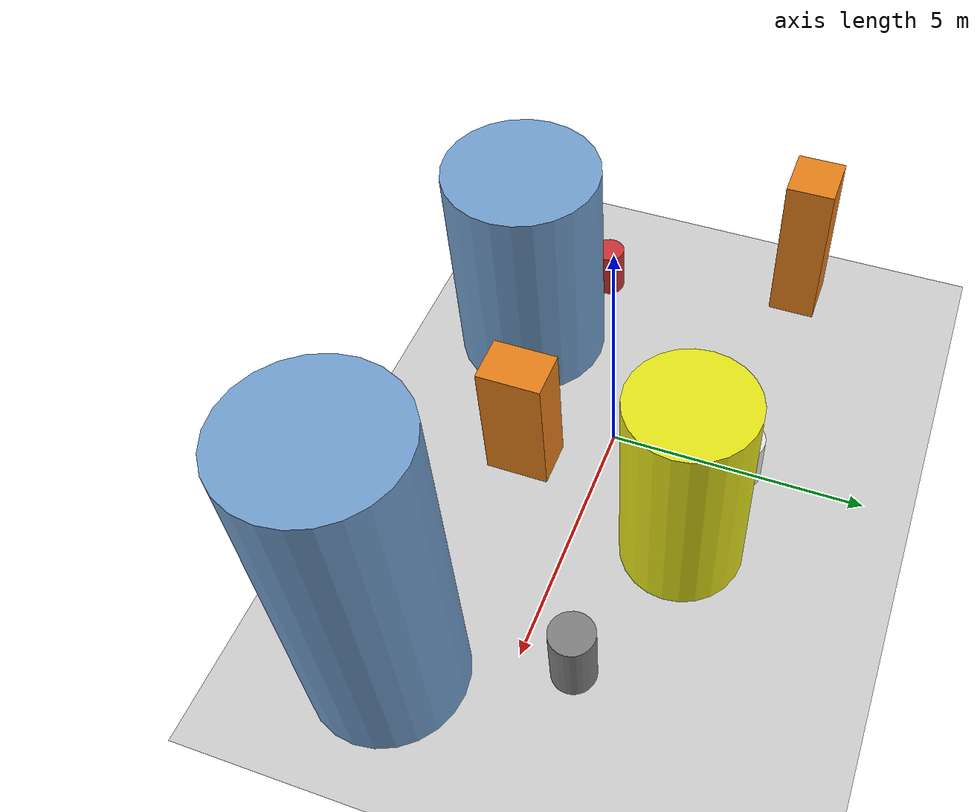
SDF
<?xml version='1.0'?>
<sdf version='1.6'>
  <world name='routeA_rl_v1__support_expansion__rl_val__mixed_3d_low_density_route__000162'>
    <!-- Sun light -->
    <light name='sun' type='directional'>
      <cast_shadows>1</cast_shadows>
      <pose>0 0 10 0 0 0</pose>
      <diffuse>0.8 0.8 0.8 1</diffuse>
      <specular>0.2 0.2 0.2 1</specular>
      <attenuation>
        <range>1000</range>
        <constant>0.9</constant>
        <linear>0.01</linear>
        <quadratic>0.001</quadratic>
      </attenuation>
      <direction>-0.5 0.1 -0.9</direction>
    </light>

    <!-- Ground plane -->
    <model name='ground_plane'>
      <static>1</static>
      <link name='link'>
        <collision name='collision'>
          <geometry>
            <plane>
              <normal>0 0 1</normal>
              <size>100 100</size>
            </plane>
          </geometry>
          <surface>
            <contact>
              <collide_bitmask>65535</collide_bitmask>
              <ode/>
            </contact>
            <friction>
              <ode>
                <mu>100</mu>
                <mu2>50</mu2>
              </ode>
              <torsional><ode/></torsional>
            </friction>
            <bounce/>
          </surface>
          <max_contacts>10</max_contacts>
        </collision>
        <visual name='visual'>
          <cast_shadows>0</cast_shadows>
          <geometry>
            <plane>
              <normal>0 0 1</normal>
              <size>100 100</size>
            </plane>
          </geometry>
          <material>
            <script>
              <uri>file://media/materials/scripts/gazebo.material</uri>
              <n>Gazebo/Grey</n>
            </script>
          </material>
        </visual>
      </link>
    </model>

    <!-- Environment -->
    <magnetic_field>6e-06 2.3e-05 -4.2e-05</magnetic_field>
    <atmosphere type='adiabatic'/>
    <physics name='default_physics' default='0' type='ode'>
      <gravity>0 0 -9.8</gravity>
      <max_step_size>0.004</max_step_size>
      <real_time_factor>1</real_time_factor>
      <real_time_update_rate>250</real_time_update_rate>
    </physics>
    <scene>
      <ambient>0.4 0.4 0.4 1</ambient>
      <background>0.7 0.7 0.7 1</background>
      <shadows>1</shadows>
    </scene>
    <wind/>
    <spherical_coordinates>
      <surface_model>EARTH_WGS84</surface_model>
      <latitude_deg>0</latitude_deg>
      <longitude_deg>0</longitude_deg>
      <elevation>0</elevation>
      <heading_deg>0</heading_deg>
    </spherical_coordinates>

    <!-- ============ OBSTACLES (8) ============ -->
    <model name='low_obs_0'>
      <static>1</static>
      <link name='link'>
        <visual name='visual'>
          <geometry>
            <cylinder>
              <radius>0.3193</radius>
              <length>1.0304</length>
            </cylinder>
          </geometry>
          <material>
            <script>
              <n>Gazebo/Red</n>
              <uri>file://media/materials/scripts/gazebo.material</uri>
            </script>
            <ambient>0.8 0.2 0.2 1</ambient>
          </material>
        </visual>
        <collision name='collision'>
          <geometry>
            <cylinder>
              <radius>0.3193</radius>
              <length>1.0304</length>
            </cylinder>
          </geometry>
          <max_contacts>10</max_contacts>
          <surface>
            <contact><ode/></contact>
            <bounce/>
            <friction>
              <ode><mu>1</mu><mu2>1</mu2></ode>
              <torsional><ode/></torsional>
            </friction>
          </surface>
        </collision>
      </link>
      <pose>-4.0000 -1.5000 0.5152 0 0 0.0000</pose>
    </model>

    <model name='low_obs_1'>
      <static>1</static>
      <link name='link'>
        <visual name='visual'>
          <geometry>
            <cylinder>
              <radius>0.4870</radius>
              <length>1.0550</length>
            </cylinder>
          </geometry>
          <material>
            <script>
              <n>Gazebo/White</n>
              <uri>file://media/materials/scripts/gazebo.material</uri>
            </script>
            <ambient>0.9 0.9 0.9 1</ambient>
          </material>
        </visual>
        <collision name='collision'>
          <geometry>
            <cylinder>
              <radius>0.4870</radius>
              <length>1.0550</length>
            </cylinder>
          </geometry>
          <max_contacts>10</max_contacts>
          <surface>
            <contact><ode/></contact>
            <bounce/>
            <friction>
              <ode><mu>1</mu><mu2>1</mu2></ode>
              <torsional><ode/></torsional>
            </friction>
          </surface>
        </collision>
      </link>
      <pose>0.0000 2.5000 0.5275 0 0 0.0000</pose>
    </model>

    <model name='low_obs_2'>
      <static>1</static>
      <link name='link'>
        <visual name='visual'>
          <geometry>
            <cylinder>
              <radius>0.4114</radius>
              <length>1.4310</length>
            </cylinder>
          </geometry>
          <material>
            <script>
              <n>Gazebo/Grey</n>
              <uri>file://media/materials/scripts/gazebo.material</uri>
            </script>
            <ambient>0.5 0.5 0.5 1</ambient>
          </material>
        </visual>
        <collision name='collision'>
          <geometry>
            <cylinder>
              <radius>0.4114</radius>
              <length>1.4310</length>
            </cylinder>
          </geometry>
          <max_contacts>10</max_contacts>
          <surface>
            <contact><ode/></contact>
            <bounce/>
            <friction>
              <ode><mu>1</mu><mu2>1</mu2></ode>
              <torsional><ode/></torsional>
            </friction>
          </surface>
        </collision>
      </link>
      <pose>5.0000 1.0000 0.7155 0 0 0.0000</pose>
    </model>

    <model name='tall_obs_0'>
      <static>1</static>
      <link name='link'>
        <visual name='visual'>
          <geometry>
            <cylinder>
              <radius>1.4976</radius>
              <length>4.5204</length>
            </cylinder>
          </geometry>
          <material>
            <script>
              <n>Gazebo/Blue</n>
              <uri>file://media/materials/scripts/gazebo.material</uri>
            </script>
            <ambient>0.447 0.624 0.812 1</ambient>
          </material>
        </visual>
        <collision name='collision'>
          <geometry>
            <cylinder>
              <radius>1.4976</radius>
              <length>4.5204</length>
            </cylinder>
          </geometry>
          <max_contacts>10</max_contacts>
          <surface>
            <contact><ode/></contact>
            <bounce/>
            <friction>
              <ode><mu>1</mu><mu2>1</mu2></ode>
              <torsional><ode/></torsional>
            </friction>
          </surface>
        </collision>
      </link>
      <pose>-2.0000 -2.5000 2.2602 0 0 0.0000</pose>
    </model>

    <model name='tall_obs_1'>
      <static>1</static>
      <link name='link'>
        <visual name='visual'>
          <geometry>
            <cylinder>
              <radius>1.1486</radius>
              <length>4.2757</length>
            </cylinder>
          </geometry>
          <material>
            <script>
              <n>Gazebo/Yellow</n>
              <uri>file://media/materials/scripts/gazebo.material</uri>
            </script>
            <ambient>0.9 0.9 0.1 1</ambient>
          </material>
        </visual>
        <collision name='collision'>
          <geometry>
            <cylinder>
              <radius>1.1486</radius>
              <length>4.2757</length>
            </cylinder>
          </geometry>
          <max_contacts>10</max_contacts>
          <surface>
            <contact><ode/></contact>
            <bounce/>
            <friction>
              <ode><mu>1</mu><mu2>1</mu2></ode>
              <torsional><ode/></torsional>
            </friction>
          </surface>
        </collision>
      </link>
      <pose>2.0000 2.0000 2.1378 0 0 0.0000</pose>
    </model>

    <model name='tall_obs_2'>
      <static>1</static>
      <link name='link'>
        <visual name='visual'>
          <geometry>
            <cylinder>
              <radius>1.4001</radius>
              <length>6.7215</length>
            </cylinder>
          </geometry>
          <material>
            <script>
              <n>Gazebo/Blue</n>
              <uri>file://media/materials/scripts/gazebo.material</uri>
            </script>
            <ambient>0.447 0.624 0.812 1</ambient>
          </material>
        </visual>
        <collision name='collision'>
          <geometry>
            <cylinder>
              <radius>1.4001</radius>
              <length>6.7215</length>
            </cylinder>
          </geometry>
          <max_contacts>10</max_contacts>
          <surface>
            <contact><ode/></contact>
            <bounce/>
            <friction>
              <ode><mu>1</mu><mu2>1</mu2></ode>
              <torsional><ode/></torsional>
            </friction>
          </surface>
        </collision>
      </link>
      <pose>6.0000 -2.0000 3.3608 0 0 0.0000</pose>
    </model>

    <model name='med_obs_0'>
      <static>1</static>
      <link name='link'>
        <visual name='visual'>
          <geometry>
            <box>
              <size>1.0598 0.9562 3.3482</size>
            </box>
          </geometry>
          <material>
            <script>
              <n>Gazebo/Orange</n>
              <uri>file://media/materials/scripts/gazebo.material</uri>
            </script>
            <ambient>0.9 0.5 0.1 1</ambient>
          </material>
        </visual>
        <collision name='collision'>
          <geometry>
            <box>
              <size>1.0598 0.9562 3.3482</size>
            </box>
          </geometry>
          <max_contacts>10</max_contacts>
          <surface>
            <contact><ode/></contact>
            <bounce/>
            <friction>
              <ode><mu>1</mu><mu2>1</mu2></ode>
              <torsional><ode/></torsional>
            </friction>
          </surface>
        </collision>
      </link>
      <pose>-5.0000 2.5000 1.6741 0 0 0.0000</pose>
    </model>

    <model name='med_obs_1'>
      <static>1</static>
      <link name='link'>
        <visual name='visual'>
          <geometry>
            <box>
              <size>0.9001 1.2384 2.7141</size>
            </box>
          </geometry>
          <material>
            <script>
              <n>Gazebo/Orange</n>
              <uri>file://media/materials/scripts/gazebo.material</uri>
            </script>
            <ambient>0.9 0.5 0.1 1</ambient>
          </material>
        </visual>
        <collision name='collision'>
          <geometry>
            <box>
              <size>0.9001 1.2384 2.7141</size>
            </box>
          </geometry>
          <max_contacts>10</max_contacts>
          <surface>
            <contact><ode/></contact>
            <bounce/>
            <friction>
              <ode><mu>1</mu><mu2>1</mu2></ode>
              <torsional><ode/></torsional>
            </friction>
          </surface>
        </collision>
      </link>
      <pose>1.0000 -1.5000 1.3570 0 0 0.0000</pose>
    </model>

    <!-- GUI camera -->
    <gui fullscreen='0'>
      <camera name='user_camera'>
        <pose>-15 0 18 0 0.85 0.15</pose>
        <view_controller>orbit</view_controller>
        <projection_type>perspective</projection_type>
      </camera>
    </gui>
  </world>
</sdf>
